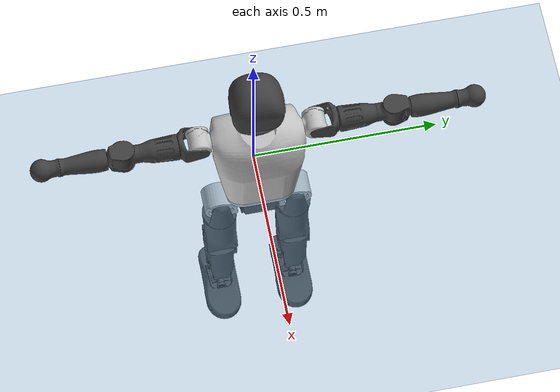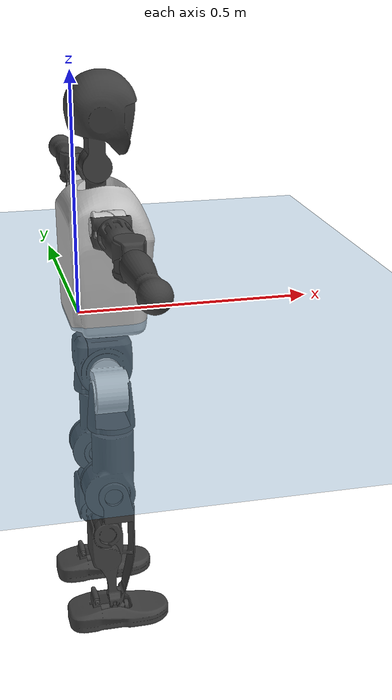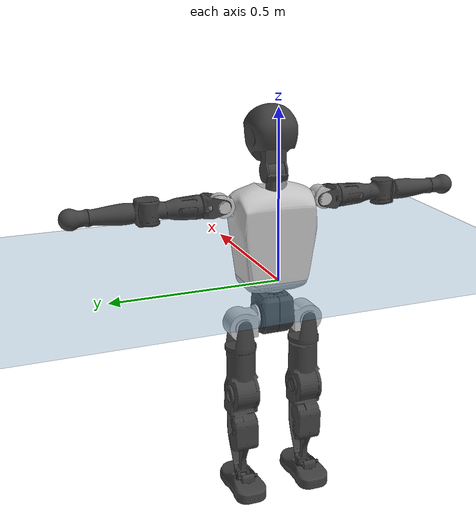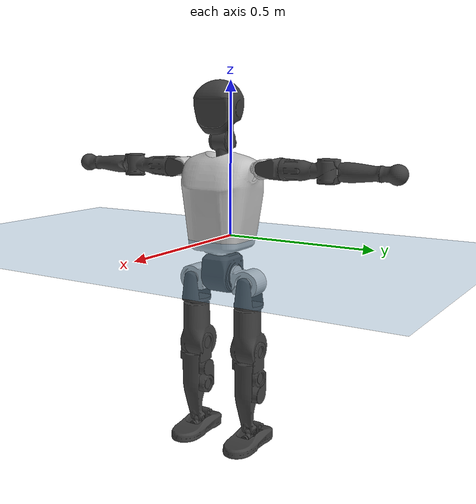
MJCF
<mujoco model="T1">
  <compiler angle="radian" assetdir="assets" balanceinertia="true" inertiafromgeom="false"/>

  <option timestep="0.005" density="1.2" viscosity="2e-05"/>

  <size nkey="1"/>

  <visual>
    <quality shadowsize="8192"/>
    <map shadowclip="0.5"/>
  </visual>

  <default>
    <default class="/">
      <joint armature="0.01" damping="0.01" frictionloss="0.1"/>
      <geom contype="0" conaffinity="0" group="1" solref="-1000 -80"/>
      <site size="0.01 0.005 0.005" group="5"/>
      <general forcelimited="true" biastype="affine" gainprm="25" biasprm="0 -25 -0.6"/>
      <default class="t1">
        <geom rgba="0.25 0.25 0.25 1"/>
        <default class="visual">
          <geom type="mesh" group="2"/>
        </default>
        <default class="collision">
          <geom group="3"/>
        </default>
        <default class="foot">
          <geom size="0.1115 0.05 0.015" type="box" condim="6" group="4" priority="1" solimp="0.015 1 0.015"/>
        </default>
        <default class="reward_collision_sphere">
          <geom group="5" rgba="1 0 0 1"/>
        </default>
      </default>
    </default>
  </default>

  <asset>
    <texture type="skybox" colorspace="auto" name="//unnamed_texture_0" builtin="gradient" rgb1="0.95 0.95 0.95" rgb2="0.95 0.95 0.95" width="100" height="600"/>
    <texture type="2d" colorspace="auto" name="texplane" builtin="checker" rgb1="0.345 0.575 0.748" rgb2="0.345 0.575 0.748" markrgb="1 1 1" width="512" height="512"/>
    <material name="MatPlane" class="/" texture="texplane" texuniform="true" texrepeat="2 2" specular="0.9"/>
    <mesh name="Trunk" class="/" file="Trunk.stl"/>
    <mesh name="H1" class="/" file="H1.stl"/>
    <mesh name="H2" class="/" file="H2.stl"/>
    <mesh name="AL1" class="/" file="AL1.stl"/>
    <mesh name="AL2" class="/" file="AL2.stl"/>
    <mesh name="AL3" class="/" file="AL3.stl"/>
    <mesh name="left_hand_link" class="/" file="left_hand_link.stl"/>
    <mesh name="AR1" class="/" file="AR1.stl"/>
    <mesh name="AR2" class="/" file="AR2.stl"/>
    <mesh name="AR3" class="/" file="AR3.stl"/>
    <mesh name="right_hand_link" class="/" file="right_hand_link.stl"/>
    <mesh name="Waist" class="/" file="Waist.stl"/>
    <mesh name="Hip_Pitch_Left" class="/" file="Hip_Pitch_Left.stl"/>
    <mesh name="Hip_Roll_Left" class="/" file="Hip_Roll_Left.stl"/>
    <mesh name="Hip_Yaw_Left" class="/" file="Hip_Yaw_Left.stl"/>
    <mesh name="Shank_Left" class="/" file="Shank_Left.stl"/>
    <mesh name="Ankle_Cross_Left" class="/" file="Ankle_Cross_Left.stl"/>
    <mesh name="left_foot_link" class="/" file="left_foot_link.stl"/>
    <mesh name="Hip_Pitch_Right" class="/" file="Hip_Pitch_Right.stl"/>
    <mesh name="Hip_Roll_Right" class="/" file="Hip_Roll_Right.stl"/>
    <mesh name="Hip_Yaw_Right" class="/" file="Hip_Yaw_Right.stl"/>
    <mesh name="Shank_Right" class="/" file="Shank_Right.stl"/>
    <mesh name="Ankle_Cross_Right" class="/" file="Ankle_Cross_Right.stl"/>
    <mesh name="right_foot_link" class="/" file="right_foot_link.stl"/>
  </asset>

  <worldbody>
    <geom name="floor" class="/" size="100 100 0.125" type="plane" group="0" material="MatPlane"/>
    <light name="toplight_shadow" class="/" pos="0 0 5" dir="0.0990148 0.0990148 -0.990148" type="directional" ambient="0.04 0.04 0.04" diffuse="0.55 0.55 0.55" specular="0.12 0.12 0.12"/>
    <light name="toplight_fill" class="/" pos="0 0 5" dir="0.0990148 0.0990148 -0.990148" type="directional" castshadow="false" ambient="0.04 0.04 0.04" diffuse="0.3 0.3 0.3" specular="0.08 0.08 0.08"/>
    <body name="trunk" childclass="t1" pos="0.00240594 -3.83455e-05 -0.00051769" quat="1 0.000154772 -0.000363094 0.000295992">
      <inertial pos="0.0395055 -0.000518126 0.107166" quat="0.999965 0.000122855 -0.00830431 -0.000856354" mass="9.36981" diaginertia="0.0189915 0.0704983 0.0663504"/>
      <joint name="//unnamed_joint_0" type="free" armature="0" damping="0" frictionloss="0"/>
      <geom name="//unnamed_geom_1" class="visual" rgba="0.76 0.76 0.76 1" mesh="Trunk"/>
      <geom name="//unnamed_geom_2" class="collision" size="0.0685633 0.0914177 0.137127" pos="0.0434997 0 0.124141" type="box"/>
      <geom name="//unnamed_geom_3" class="reward_collision_sphere" size="0.10513" pos="0.0434997 0 0.103451"/>
      <geom name="//unnamed_geom_4" class="reward_collision_sphere" size="0.0137127" pos="0.0434997 0.0835574 0"/>
      <geom name="//unnamed_geom_5" class="reward_collision_sphere" size="0.0137127" pos="0.0434997 -0.0835574 0"/>
      <geom name="//unnamed_geom_6" class="reward_collision_sphere" size="0.0137127" pos="0.0434997 0.105184 0.186211"/>
      <geom name="//unnamed_geom_7" class="reward_collision_sphere" size="0.0137127" pos="0.0434997 -0.105184 0.186211"/>
      <site name="imu" pos="-0.0129815 -0.00519647 0.0131944" size="0.00914177"/>
      <camera name="track" pos="0 -1.96606 0" quat="0.707107 0.707107 0 0" mode="trackcom"/>
      <camera name="ego_camera" pos="0.0884495 0 0.434493" quat="-0.5 -0.5 0.5 0.5"/>
      <body name="H1" pos="0.0428645 -0.0027437 0.24898" quat="1 -7.85005e-05 -3.01845e-05 0.000182286">
        <inertial pos="-0.0032599 -0.00231966 0.0579225" quat="0.769217 -0.0217291 0.00600967 0.638589" mass="0.348747" diaginertia="4.8158e-05 0.000197833 0.000175367"/>
        <joint name="AAHead_yaw" pos="0 0 0" axis="0.0129512 0.00482295 0.999904" range="-1.56985 1.57481" armature="0.0102586" damping="0.00566385" frictionloss="0.0999094"/>
        <geom name="//unnamed_geom_8" class="visual" mesh="H1"/>
        <body name="H2" pos="-0.000804126 -0.000516657 0.0634853" quat="0.999999 -0.00108936 -0.000467962 -0.000683003">
          <inertial pos="0.00436874 -0.00130642 0.10165" quat="0.987859 0.109448 -0.0749933 -0.0808194" mass="0.500227" diaginertia="0.000404976 0.00178409 0.00209135"/>
          <joint name="Head_pitch" pos="0 0 0" axis="9.42617e-05 -1 -0.000750825" range="-1.2302 0.351389" armature="0.0101766" damping="0.00601229" frictionloss="0.0900044"/>
          <geom name="//unnamed_geom_9" class="visual" mesh="H2"/>
          <geom name="//unnamed_geom_10" class="collision" size="0.0731342" pos="0.00724996 0 0.113796"/>
          <geom name="//unnamed_geom_11" class="reward_collision_sphere" size="0.0822759" pos="0.0144999 0 0.103451"/>
        </body>
      </body>
      <body name="AL1" pos="0.0443865 0.107634 0.228951" quat="1 -1.80347e-05 0.000447344 1.3082e-05">
        <inertial pos="-0.00279911 0.0467524 -0.00271243" quat="0.506121 0.495335 -0.504357 0.494073" mass="0.422345" diaginertia="0.000287639 0.00124468 0.000353016"/>
        <joint name="Left_Shoulder_Pitch" pos="0 0 0" axis="-0.0111891 0.999935 0.00235114" stiffness="0.0138988" range="-3.2814 1.21417" armature="0.0101683" damping="0.00943992" frictionloss="0.0798913"/>
        <geom name="//unnamed_geom_12" class="visual" rgba="0.76 0.76 0.76 1" mesh="AL1"/>
        <body name="AL2" pos="-0.000561227 0.0497142 0.00261998" quat="1 0.00021737 -8.46419e-05 0.000451205">
          <inertial pos="0.00283172 0.0377854 0.00157373" quat="0.488036 0.511708 -0.487911 0.511779" mass="0.121984" diaginertia="8.58333e-05 0.000337078 0.000210224"/>
          <joint name="Left_Shoulder_Roll" pos="0 0 0" axis="-0.999998 -0.00147391 0.00112406" range="-1.52404 1.68334" armature="0.00907397" damping="0.0182268" frictionloss="0.0958473"/>
          <geom name="//unnamed_geom_13" class="visual" mesh="AL2"/>
          <body name="AL3" pos="0.00308298 0.0595105 -0.00107369" quat="0.999999 0.000568228 0.00114368 -2.16101e-05">
            <inertial pos="-0.000392639 0.0830826 0.00266794" quat="0.710894 0.703193 0.011791 -0.00317069" mass="0.786533" diaginertia="0.00265688 0.0116652 0.000732443"/>
            <joint name="Left_Elbow_Pitch" pos="0 0 0" axis="-0.0051298 -0.999982 -0.00305999" range="-2.2572 2.32339" armature="0.00781827" damping="0" frictionloss="0.0894512"/>
            <geom name="//unnamed_geom_14" class="visual" mesh="AL3"/>
            <geom name="//unnamed_geom_15" class="collision" size="0.0274253 0.0685633" pos="0 0.0491514 0" quat="0.707105 0.707108 0 0" type="cylinder"/>
            <geom name="//unnamed_geom_16" class="reward_collision_sphere" size="0.0329104"/>
            <body name="left_hand_link" pos="0.00159445 0.145183 0.000529031" quat="0.999999 -0.000965255 0.000332337 0.000898922">
              <inertial pos="0.00203885 0.105055 0.00157355" quat="0.708362 0.705846 -0.00182083 0.00152627" mass="0.245334" diaginertia="0.00165547 0.00754134 0.000249119"/>
              <joint name="Left_Elbow_Yaw" pos="0 0 0" axis="-0.00499336 -0.00589131 0.99997" stiffness="0.000329651" range="-2.40754 -0.043388" armature="0.0104504" damping="0.0257059" frictionloss="0.103948"/>
              <geom name="//unnamed_geom_17" class="visual" mesh="left_hand_link"/>
              <geom name="//unnamed_geom_18" class="collision" size="0.0274253 0.0799905" pos="0 0.127794 0" quat="0.707105 0.707108 0 0" type="cylinder"/>
              <geom name="//unnamed_geom_19" class="reward_collision_sphere" size="0.0457089"/>
              <geom name="//unnamed_geom_20" class="reward_collision_sphere" size="0.0319962" pos="0 0.108133 0"/>
              <geom name="//unnamed_geom_21" class="reward_collision_sphere" size="0.0319962" pos="0 0.211351 0"/>
            </body>
          </body>
        </body>
      </body>
      <body name="AR1" pos="0.0418878 -0.106468 0.225752" quat="0.999999 -0.000947877 0.00096462 -6.44236e-05">
        <inertial pos="0.000532216 -0.0444989 -4.22458e-06" quat="0.504786 0.495365 -0.503879 0.495894" mass="0.409837" diaginertia="0.000273347 0.00118699 0.000347594"/>
        <joint name="Right_Shoulder_Pitch" pos="0 0 0" axis="0.00267894 -0.999989 0.00389971" stiffness="0.0149875" range="-1.23165 3.30976" armature="0.0101673" damping="0" frictionloss="0.0821153"/>
        <geom name="//unnamed_geom_22" class="visual" rgba="0.76 0.76 0.76 1" mesh="AR1"/>
        <body name="AR2" pos="0.000579418 -0.0438416 -0.00280007" quat="1 0.000213414 0.000287906 -0.000483667">
          <inertial pos="0.000634838 -0.0346007 -0.00242128" quat="0.508817 0.489658 -0.513523 0.487478" mass="0.126851" diaginertia="8.27219e-05 0.00031659 0.000218263"/>
          <joint name="Right_Shoulder_Roll" pos="0 0 0" axis="-0.999798 -0.0178567 0.00921101" range="-1.69327 1.5921" armature="0.00965819" damping="0.0208949" frictionloss="0.0915481"/>
          <geom name="//unnamed_geom_23" class="visual" mesh="AR2"/>
          <body name="AR3" pos="0.00114943 -0.0574371 0.000213549" quat="1 3.22444e-05 -0.000161486 -7.95532e-05">
            <inertial pos="-0.00294908 -0.0835348 -0.000349492" quat="0.702712 0.711454 0.00517129 -0.00168899" mass="0.777822" diaginertia="0.00260848 0.0117931 0.000758954"/>
            <joint name="Right_Elbow_Pitch" pos="0 0 0" axis="-0.00616596 0.999968 0.00508629" range="-2.26737 2.22001" armature="0.00906326" damping="0.0100304" frictionloss="0.0793795"/>
            <geom name="//unnamed_geom_24" class="visual" mesh="AR3"/>
            <geom name="//unnamed_geom_25" class="collision" size="0.0274253 0.0685633" pos="0 -0.0491514 0" quat="0.707105 0.707108 0 0" type="cylinder"/>
            <geom name="//unnamed_geom_26" class="reward_collision_sphere" size="0.0329104"/>
            <body name="right_hand_link" pos="0.00116843 -0.142373 -0.000886885" quat="1 -6.4782e-05 -4.32524e-06 -3.21978e-05">
              <inertial pos="-0.000149083 -0.106658 0.00353475" quat="0.706641 0.707573 0.000486985 4.77678e-05" mass="0.251604" diaginertia="0.0016402 0.00730422 0.000254114"/>
              <joint name="Right_Elbow_Yaw" pos="0 0 0" axis="-0.00251595 -0.000316007 0.999997" stiffness="0.0100642" range="0.0423301 2.43296" armature="0.00907498" damping="0" frictionloss="0.0789745"/>
              <geom name="//unnamed_geom_27" class="visual" mesh="right_hand_link"/>
              <geom name="//unnamed_geom_28" class="collision" size="0.0274253 0.0799905" pos="0 -0.127794 0" quat="0.707105 0.707108 0 0" type="cylinder"/>
              <geom name="//unnamed_geom_29" class="reward_collision_sphere" size="0.0457089"/>
              <geom name="//unnamed_geom_30" class="reward_collision_sphere" size="0.0319962" pos="0 -0.108133 0"/>
              <geom name="//unnamed_geom_31" class="reward_collision_sphere" size="0.0319962" pos="0 -0.211351 0"/>
            </body>
          </body>
        </body>
      </body>
      <body name="Waist" pos="0.0451085 -0.00126632 -0.119484" quat="1 0.000490845 0.000116788 0.000304858">
        <inertial pos="0.00237731 -0.000538448 0.00769674" quat="0.983924 -0.00420737 -0.178185 0.0112109" mass="1.91695" diaginertia="0.00111003 0.00483864 0.00579911"/>
        <joint name="Waist" pos="0 0 0" axis="0.0129323 -0.00802871 0.999884" stiffness="0.00254198" range="-1.61263 1.52772" armature="0.00930337" damping="0.011336" frictionloss="0.0789771"/>
        <geom name="//unnamed_geom_32" class="visual" mesh="Waist"/>
        <body name="Hip_Pitch_Left" pos="0.000593681 0.102856 -0.000417893" quat="1 -2.09692e-05 2.35625e-05 4.17429e-05">
          <inertial pos="0.00140972 -0.0102458 -0.018564" quat="0.975688 0.218322 0.0171257 0.00863524" mass="0.782332" diaginertia="0.000354033 0.00139363 0.00154334"/>
          <joint name="Left_Hip_Pitch" pos="0 0 0" axis="-0.00717623 0.999969 -0.00325511" stiffness="0.0083264" range="-1.8059 1.57378" armature="0.0101627" damping="0.0229088" frictionloss="0.0904935"/>
          <geom name="//unnamed_geom_33" class="visual" rgba="0.76 0.76 0.76 1" mesh="Hip_Pitch_Left"/>
          <body name="Hip_Roll_Left" pos="0.00271119 -0.0016278 -0.0216307" quat="0.999999 0.000595602 0.000663928 -0.00120468">
            <inertial pos="0.00376336 5.05035e-05 -0.0552154" quat="0.706947 -0.00630354 -0.00554487 0.707217" mass="0.275242" diaginertia="0.000328649 0.00134435 0.000583341"/>
            <joint name="Left_Hip_Roll" pos="0 0 0" axis="-0.999894 0.0126399 -0.00728561" range="-1.5152 0.223599" armature="0.00823566" damping="0" frictionloss="0.0874682"/>
            <geom name="//unnamed_geom_34" class="visual" mesh="Hip_Roll_Left"/>
            <geom name="//unnamed_geom_35" class="reward_collision_sphere" size="0.0502797"/>
            <body name="Hip_Yaw_Left" pos="0.00248575 -0.0022785 -0.0834599" quat="0.999999 0.000953258 -0.00106789 4.65048e-05">
              <inertial pos="-0.00743505 -0.000202425 -0.0926452" quat="0.695976 -0.0361073 -0.0308982 0.716491" mass="1.67339" diaginertia="0.00539215 0.0236032 0.00309249"/>
              <joint name="Left_Hip_Yaw" pos="0 0 0" axis="-0.000483729 0.00358213 -0.999993" range="-0.955493 1.06384" armature="0.00910011" damping="0.00533898" frictionloss="0.104085"/>
              <geom name="//unnamed_geom_36" class="visual" mesh="Hip_Yaw_Left"/>
              <geom name="//unnamed_geom_37" class="collision" size="0.0457089 0.0731342" type="cylinder"/>
              <body name="Shank_Left" pos="-0.0107951 0.00241391 -0.139858" quat="1 3.6389e-05 -7.22388e-05 5.44766e-05">
                <inertial pos="-0.00681151 0.000573264 -0.128603" quat="0.997517 -0.0049438 -0.0143592 0.0687659" mass="1.29085" diaginertia="0.0069893 0.0326782 0.00227857"/>
                <joint name="Left_Knee_Pitch" pos="0 0 0" axis="-0.000752492 0.999911 0.01332" range="0.0121505 2.39507" armature="0.00792717" damping="0.00957324" frictionloss="0.103257"/>
                <geom name="//unnamed_geom_38" class="visual" mesh="Shank_Left"/>
                <geom name="//unnamed_geom_39" class="collision" size="0.0457089 0.0685633" pos="0 0 -0.124141" type="cylinder"/>
                <geom name="//unnamed_geom_40" class="reward_collision_sphere" size="0.0594215"/>
                <body name="Ankle_Cross_Left" pos="-0.00152799 -0.000608593 -0.289563" quat="1 0.000414396 -7.41403e-05 -2.16791e-06">
                  <inertial pos="-0.00225604 -0.000592842 -0.0073813" quat="0.438955 0.551644 0.552757 0.444373" mass="0.0571467" diaginertia="6.04575e-06 2.40168e-05 1.36004e-05"/>
                  <joint name="Left_Ankle_Pitch" pos="0 0 0" axis="-0.00604969 0.99993 0.0102065" range="-0.862966 0.299814" armature="0.0103032" damping="0.00891529" frictionloss="0.0855514"/>
                  <geom name="//unnamed_geom_41" class="visual" mesh="Ankle_Cross_Left"/>
                  <body name="left_foot_link" pos="0.00180388 -0.00169094 -0.0140463" quat="1 -0.000236568 6.38645e-05 -5.99684e-05">
                    <inertial pos="-0.0025863 0.0024672 -0.0092855" quat="-0.00297348 0.61781 -0.00245281 0.786318" mass="0.523327" diaginertia="0.000532975 0.00214875 0.00247198"/>
                    <joint name="Left_Ankle_Roll" pos="0 0 0" axis="-0.999988 0.00300087 -0.00380645" range="-0.400247 0.410832" armature="0.00919886" damping="0.00294361" frictionloss="0.0963628"/>
                    <geom name="//unnamed_geom_42" class="visual" mesh="left_foot_link"/>
                    <geom name="left_foot" class="foot" size="0.100767 0.0448335 0.0131784" pos="0.00724996 0 -0.0155176"/>
                    <geom name="//unnamed_geom_44" class="reward_collision_sphere" size="0.0475372" pos="0.00724996 0 -0.0155176"/>
                    <geom name="//unnamed_geom_45" class="reward_collision_sphere" size="0.0274253" pos="0.0688746 -0.0226097 -0.0155176"/>
                    <geom name="//unnamed_geom_46" class="reward_collision_sphere" size="0.0274253" pos="-0.0507497 -0.0226097 -0.0155176"/>
                    <site name="left_foot" class="foot" pos="0.00724996 0 -0.0155176" size="0.00914177"/>
                  </body>
                </body>
              </body>
            </body>
          </body>
        </body>
        <body name="Hip_Pitch_Right" pos="-0.00128249 -0.103893 -0.00214932" quat="1 1.88323e-05 -6.40675e-05 -0.000428572">
          <inertial pos="0.00135152 0.00737282 -0.0214136" quat="0.97341 -0.228585 0.0144344 -0.00379061" mass="0.77067" diaginertia="0.000350515 0.00138922 0.00150705"/>
          <joint name="Right_Hip_Pitch" pos="0 0 0" axis="0.0031583 -0.999991 0.00270975" range="-1.61164 1.85139" armature="0.0088072" damping="0.0217916" frictionloss="0.0793406"/>
          <geom name="//unnamed_geom_47" class="visual" rgba="0.76 0.76 0.76 1" mesh="Hip_Pitch_Right"/>
          <body name="Hip_Roll_Right" pos="0.00256885 -7.06873e-05 -0.0207396" quat="1 1.2891e-05 -1.54091e-05 -3.10688e-06">
            <inertial pos="0.00115061 -0.00322789 -0.0528308" quat="0.706874 -0.0060107 -0.00586773 0.70729" mass="0.284547" diaginertia="0.000337881 0.00132986 0.000608764"/>
            <joint name="Right_Hip_Roll" pos="0 0 0" axis="-0.999908 0.00358172 -0.0130731" range="-0.199678 1.58286" armature="0.00797868" damping="0.0020119" frictionloss="0.0872513"/>
            <geom name="//unnamed_geom_48" class="visual" mesh="Hip_Roll_Right"/>
            <geom name="//unnamed_geom_49" class="reward_collision_sphere" size="0.0502797"/>
            <body name="Hip_Yaw_Right" pos="-0.000411818 0.000785518 -0.0877741" quat="1 0.00010637 -0.000853964 -0.000302529">
              <inertial pos="-0.00300908 0.00216079 -0.094667" quat="0.711875 -0.0227756 -0.0392705 0.700838" mass="1.66211" diaginertia="0.00521675 0.0229558 0.00307524"/>
              <joint name="Right_Hip_Yaw" pos="0 0 0" axis="0.00510271 -0.00038018 -0.999987" range="-1.0059 0.996282" armature="0.0096939" damping="0.0116495" frictionloss="0.0921183"/>
              <geom name="//unnamed_geom_50" class="visual" mesh="Hip_Yaw_Right"/>
              <geom name="//unnamed_geom_51" class="collision" size="0.0457089 0.0731342" type="cylinder"/>
              <body name="Shank_Right" pos="-0.00791183 -0.00254522 -0.136227" quat="1 9.9334e-05 0.000229993 -0.00016998">
                <inertial pos="-0.00653517 0.00148171 -0.128537" quat="0.999396 0.00219066 -0.0294396 -0.0183336" mass="1.39651" diaginertia="0.00671057 0.0306311 0.0022569"/>
                <joint name="Right_Knee_Pitch" pos="0 0 0" axis="-0.00515616 -0.999937 0.00998323" range="-2.37898 -0.000712102" armature="0.00921682" damping="0.00754098" frictionloss="0.0855397"/>
                <geom name="//unnamed_geom_52" class="visual" mesh="Shank_Right"/>
                <geom name="//unnamed_geom_53" class="collision" size="0.0457089 0.0685633" pos="0 0 -0.124141" type="cylinder"/>
                <geom name="//unnamed_geom_54" class="reward_collision_sphere" size="0.0594215"/>
                <body name="Ankle_Cross_Right" pos="-0.000642902 -0.00151473 -0.287947" quat="1 -0.000214743 -8.89079e-05 -0.000108538">
                  <inertial pos="-0.00245902 -0.00273266 -0.0085428" quat="0.44302 0.555815 0.541009 0.44957" mass="0.0555469" diaginertia="5.7934e-06 2.20708e-05 1.29548e-05"/>
                  <joint name="Right_Ankle_Pitch" pos="0 0 0" axis="0.0102868 -0.999933 0.00537066" range="-0.317869 0.869087" armature="0.0102996" damping="0" frictionloss="0.0902169"/>
                  <geom name="//unnamed_geom_55" class="visual" mesh="Ankle_Cross_Right"/>
                  <body name="right_foot_link" pos="0.00076516 -0.00146875 -0.00947736" quat="1 -2.08632e-06 -5.44425e-06 -2.26261e-05">
                    <inertial pos="0.000526231 0.000527004 -0.00668942" quat="0.0105607 0.622589 0.000290248 0.782477" mass="0.528863" diaginertia="0.000559436 0.00219614 0.0025951"/>
                    <joint name="Right_Ankle_Roll" pos="0 0 0" axis="-0.999993 0.0032842 0.0017101" stiffness="0.00158447" range="-0.445188 0.393272" armature="0.00948465" damping="0.0149953" frictionloss="0.0802897"/>
                    <geom name="//unnamed_geom_56" class="visual" mesh="right_foot_link"/>
                    <geom name="right_foot" class="foot" size="0.109386 0.0460017 0.0143482" pos="0.00724996 0 -0.0155176"/>
                    <geom name="//unnamed_geom_58" class="reward_collision_sphere" size="0.0365671"/>
                    <geom name="//unnamed_geom_59" class="reward_collision_sphere" size="0.0274253" pos="0.00724996 0 -0.0155176"/>
                    <geom name="//unnamed_geom_60" class="reward_collision_sphere" size="0.0274253" pos="0.0688746 0.0226097 -0.0155176"/>
                    <geom name="//unnamed_geom_61" class="reward_collision_sphere" size="0.0274253" pos="-0.0507497 0.0226097 -0.0155176"/>
                    <site name="right_foot" class="foot" pos="0.00724996 0 -0.0155176" size="0.00914177"/>
                  </body>
                </body>
              </body>
            </body>
          </body>
        </body>
      </body>
    </body>
  </worldbody>

  <contact>
    <pair class="/" geom1="floor" geom2="left_foot" name="//unnamed_contact_0"/>
    <pair class="/" geom1="floor" geom2="right_foot" name="//unnamed_contact_1"/>
  </contact>

  <actuator>
    <general name="AAHead_yaw" class="/" joint="AAHead_yaw" forcerange="-7.01016 7.01016" gainprm="23.4548" biasprm="0 -23.4548 -0.500715"/>
    <general name="Head_pitch" class="/" joint="Head_pitch" forcerange="-6.18415 6.18415" gainprm="23.4548" biasprm="0 -23.4548 -0.500715"/>
    <general name="Left_Shoulder_Pitch" class="/" joint="Left_Shoulder_Pitch" forcerange="-15.9198 15.9198" gainprm="23.4548" biasprm="0 -23.4548 -0.500715"/>
    <general name="Left_Shoulder_Roll" class="/" joint="Left_Shoulder_Roll" forcerange="-16.4861 16.4861" gainprm="23.4548" biasprm="0 -23.4548 -0.500715"/>
    <general name="Left_Elbow_Pitch" class="/" joint="Left_Elbow_Pitch" forcerange="-18.1286 18.1286" gainprm="23.4548" biasprm="0 -23.4548 -0.500715"/>
    <general name="Left_Elbow_Yaw" class="/" joint="Left_Elbow_Yaw" forcerange="-17.7978 17.7978" gainprm="23.4548" biasprm="0 -23.4548 -0.500715"/>
    <general name="Right_Shoulder_Pitch" class="/" joint="Right_Shoulder_Pitch" forcerange="-15.8764 15.8764" gainprm="23.4548" biasprm="0 -23.4548 -0.500715"/>
    <general name="Right_Shoulder_Roll" class="/" joint="Right_Shoulder_Roll" forcerange="-16.7881 16.7881" gainprm="23.4548" biasprm="0 -23.4548 -0.500715"/>
    <general name="Right_Elbow_Pitch" class="/" joint="Right_Elbow_Pitch" forcerange="-16.2586 16.2586" gainprm="23.4548" biasprm="0 -23.4548 -0.500715"/>
    <general name="Right_Elbow_Yaw" class="/" joint="Right_Elbow_Yaw" forcerange="-16.0473 16.0473" gainprm="23.4548" biasprm="0 -23.4548 -0.500715"/>
    <general name="Waist" class="/" joint="Waist" forcerange="-28.562 28.562" gainprm="23.4548" biasprm="0 -23.4548 -0.500715"/>
    <general name="Left_Hip_Pitch" class="/" joint="Left_Hip_Pitch" forcerange="-41.1245 41.1245" gainprm="23.4548" biasprm="0 -23.4548 -0.500715"/>
    <general name="Left_Hip_Roll" class="/" joint="Left_Hip_Roll" forcerange="-26.3872 26.3872" gainprm="23.4548" biasprm="0 -23.4548 -0.500715"/>
    <general name="Left_Hip_Yaw" class="/" joint="Left_Hip_Yaw" forcerange="-24.7204 24.7204" gainprm="23.4548" biasprm="0 -23.4548 -0.500715"/>
    <general name="Left_Knee_Pitch" class="/" joint="Left_Knee_Pitch" forcerange="-57.2287 57.2287" gainprm="23.4548" biasprm="0 -23.4548 -0.500715"/>
    <general name="Left_Ankle_Pitch" class="/" joint="Left_Ankle_Pitch" forcerange="-17.1236 17.1236" gainprm="23.4548" biasprm="0 -23.4548 -0.500715"/>
    <general name="Left_Ankle_Roll" class="/" joint="Left_Ankle_Roll" forcerange="-13.7234 13.7234" gainprm="23.4548" biasprm="0 -23.4548 -0.500715"/>
    <general name="Right_Hip_Pitch" class="/" joint="Right_Hip_Pitch" forcerange="-41.9971 41.9971" gainprm="23.4548" biasprm="0 -23.4548 -0.500715"/>
    <general name="Right_Hip_Roll" class="/" joint="Right_Hip_Roll" forcerange="-28.4482 28.4482" gainprm="23.4548" biasprm="0 -23.4548 -0.500715"/>
    <general name="Right_Hip_Yaw" class="/" joint="Right_Hip_Yaw" forcerange="-27.1876 27.1876" gainprm="23.4548" biasprm="0 -23.4548 -0.500715"/>
    <general name="Right_Knee_Pitch" class="/" joint="Right_Knee_Pitch" forcerange="-49.2792 49.2792" gainprm="23.4548" biasprm="0 -23.4548 -0.500715"/>
    <general name="Right_Ankle_Pitch" class="/" joint="Right_Ankle_Pitch" forcerange="-16.4138 16.4138" gainprm="23.4548" biasprm="0 -23.4548 -0.500715"/>
    <general name="Right_Ankle_Roll" class="/" joint="Right_Ankle_Roll" forcerange="-13.8142 13.8142" gainprm="23.4548" biasprm="0 -23.4548 -0.500715"/>
  </actuator>

  <sensor>
    <gyro site="imu" name="imu_angular_velocity"/>
    <velocimeter site="imu" name="imu_linear_velocity"/>
    <framelinvel objtype="site" objname="left_foot" name="left_foot_global_linear_velocity"/>
    <framelinvel objtype="site" objname="right_foot" name="right_foot_global_linear_velocity"/>
  </sensor>

  <keyframe>
    <key name="home" qpos="0 0 0.6385 1 0 0 0 0 0 0 1.4 0 -0.4 0 -1.4 0 0.4 0 -0.4 0 0 0.8 -0.4 0 0.4 0 0 -0.8 0.4 0"/>
  </keyframe>
</mujoco>
